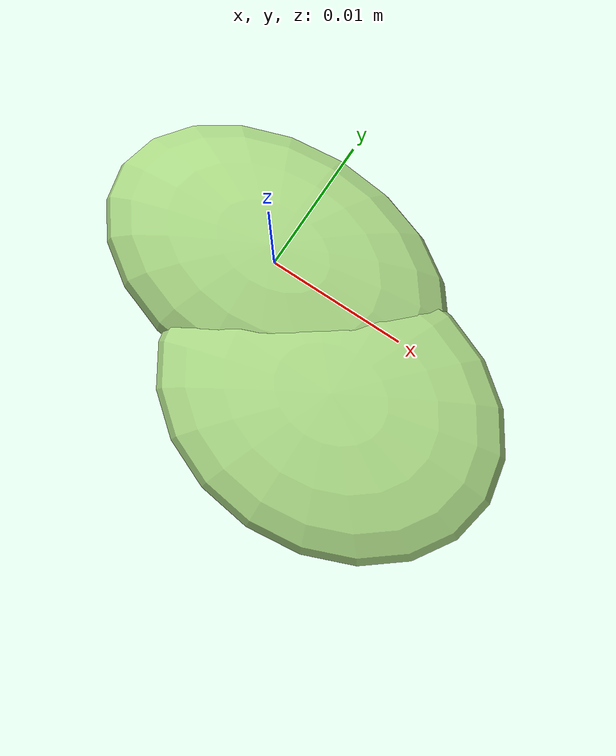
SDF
<?xml version="1.0" ?>
<!-- |    This document was autogenerated by xmacro from data/veggie_template/veggie_base.sdf.xacro  | -->
<!-- |    EDITING THIS FILE BY HAND IS NOT RECOMMENDED                                               | -->
<sdf version="1.8">
	<!-- Parameters -->
	<!-- Base -->
	<!-- Joint 0 -->
	<!-- Link 1 -->
	<!-- Joint 1 -->
	<!-- Link 2 -->
	<!-- Primitives -->
	<!-- All dimensions are half -->
	<!-- Object -->
	<model name="veggie">
		<!-- link0 -->
		<link name="link0">
			<inertial>
				<mass>0.0018729536837227027</mass>
				<inertia>
					<ixx>3.4325246647781433e-08</ixx>
					<ixy>0</ixy>
					<ixz>0</ixz>
					<iyy>6.897475592745741e-08</iyy>
					<iyz>0</iyz>
					<izz>9.161063296242622e-08</izz>
				</inertia>
			</inertial>
			<visual name="link0_visual">
				<pose>0 0 0 0 0 0</pose>
				<geometry>
					<ellipsoid>
						<radii>0.012981940746435714 0.008719583873013246 0.003950044888008722</radii>
					</ellipsoid>
				</geometry>
				<material>
					<ambient>0.659 0.839 0.514 1</ambient>
					<diffuse>0.659 0.839 0.514 1</diffuse>
					<specular>0 0 0 0</specular>
					<emissive>0 0 0 1</emissive>
				</material>
			</visual>
			<collision name="link0_collision">
				<pose>0 0 0 0 0 0 </pose>
				<geometry>
					<ellipsoid>
						<radii>0.012981940746435714 0.008719583873013246 0.003950044888008722</radii>
					</ellipsoid>
				</geometry>
			</collision>
		</link>
		<!-- link1 -->
		<joint name="joint0" type="fixed">
			<pose relative_to="link0">0.008262594023971389 -0.005892877058036679 0.00046478873944800093 0.0 0.0 0.0</pose>
			<parent>link0</parent>
			<child>link1</child>
		</joint>
		<link name="link1">
			<pose relative_to="joint0">0 0 0 0 0 0</pose>
			<inertial>
				<mass>0.0015352778908435548</mass>
				<inertia>
					<ixx>3.192643906890898e-08</ixx>
					<ixy>0</ixy>
					<ixz>0</ixz>
					<iyy>4.88034659182966e-08</iyy>
					<iyz>0</iyz>
					<izz>7.488487824978637e-08</izz>
				</inertia>
			</inertial>
			<visual name="link1_visual">
				<pose>0 0 0 0 0 0</pose>
				<geometry>
					<ellipsoid>
						<radii>0.01222384170241326 0.009718962271666161 0.003085103635293553</radii>
					</ellipsoid>
				</geometry>
				<material>
					<ambient>0.659 0.839 0.514 1</ambient>
					<diffuse>0.659 0.839 0.514 1</diffuse>
					<specular>0 0 0 0</specular>
					<emissive>0 0 0 1</emissive>
				</material>
			</visual>
			<collision name="link1_collision">
				<pose>0 0 0 0 0 0 </pose>
				<geometry>
					<ellipsoid>
						<radii>0.01222384170241326 0.009718962271666161 0.003085103635293553</radii>
					</ellipsoid>
				</geometry>
			</collision>
		</link>
		<!-- link2 -->
	</model>
</sdf>
